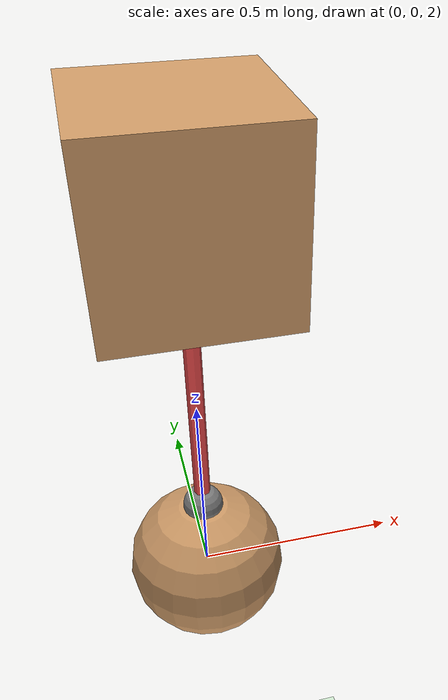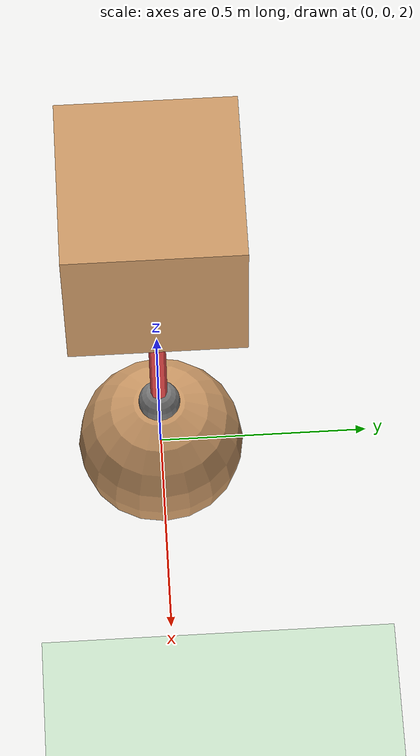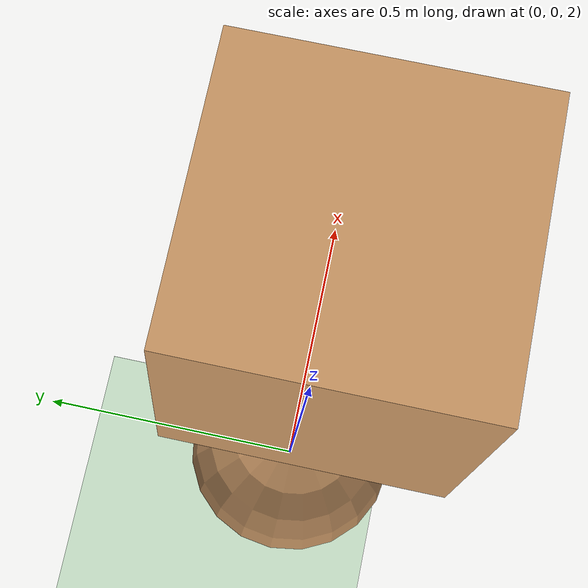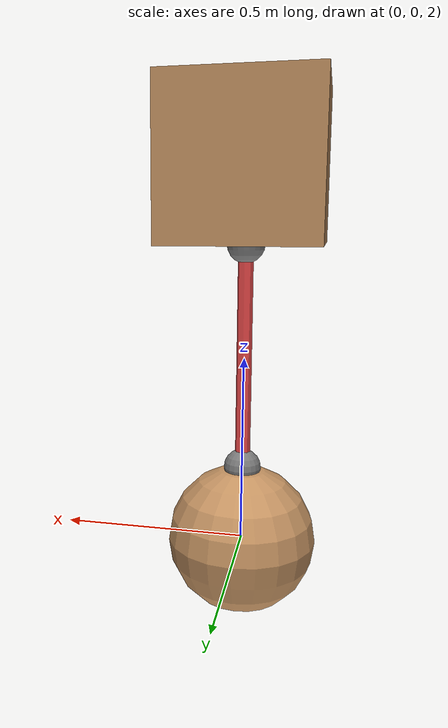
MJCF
<?xml version="1.0" encoding="utf-8"?>
<mujoco model="arm">
	<compiler angle="degree" coordinate="local" inertiafromgeom="true"/>
	<default>
		<geom conaffinity="1" condim="1" contype="1" margin="0.001" material="geom" rgba="0.8 0.6 .4 1" solimp=".8 .8 .01" solref=".02 1"/>
		<motor ctrllimited="true" ctrlrange="-.4 .4"/>
	</default>
	<option integrator="RK4" timestep="0.002"/>
	<visual>
		<map znear="0.02"/>
	</visual>
	<worldbody>
		<light cutoff="100" diffuse="1 1 1" dir="0 0 -1.3" directional="true" exponent="1" pos="0 0 1.3" specular="0.1 0.1 0.1"/>
		<geom conaffinity="1" condim="3" material="MatPlane" name="floor" pos="0 0 0" rgba="0.8 0.9 0.8 1" size="40 40 40" type="plane"/>
		<body name="block_body" pos="0.0 0.0 3.0">
			<geom name="block_geom" size="0.2 0.2 0.2" type="box"/>
			<site name="box_site" pos="0.0 0.0 -0.2" size="0.05"/>
			<body name="ball" pos="0.0 0.0 -1.0">
				<joint damping="2.0" name="ball_joint" pos="0.0 0.0 -0.2" type="ball"/>
				<joint axis="0 0 1" damping="2.0" type="slide"/>
				<joint axis="0 1 0" damping="2.0" type="slide"/>
				<joint axis="1 0 0" damping="2.0" type="slide"/>
				<geom pos="0.0 0.0 0.0" size="0.2" type="sphere"/>
				<site name="ball_site" pos="0.0 0.0 0.2" size="0.05"/>
			</body>
		</body>
	</worldbody>
	<tendon>
		<spatial damping="100.0" limited="false" name="string" range="0.5 2" rgba=".95 .3 .3 1" stiffness="3700.0" width="0.02">
			<site site="box_site"/>
			<site site="ball_site"/>
		</spatial>
	</tendon>
	<sensor>
		<force site="ball_site" name="ball_sensor"/>
	</sensor>
	<actuator>
		<general ctrllimited="true" ctrlrange="-2 0" gainprm="2000" name="string_actuator" tendon="string"/>
	</actuator>
	<asset>
		<texture fileback="sunny-back.png" filedown="sunny-down.png" filefront="sunny-front.png" fileleft="sunny-left.png" fileright="sunny-right.png" fileup="sunny-up.png" type="skybox"/>
		<texture builtin="flat" height="1278" mark="cross" markrgb="1 1 1" name="texgeom" random="0.01" rgb1="0.8627450980392157 0.8901960784313725 0.9137254901960784" rgb2="0.9058823529411765 0.9215686274509803 0.9647058823529412" type="cube" width="127"/>
		<texture builtin="checker" height="100" name="texplane" rgb1="0.8235294117647058 0.8117647058823529 0.9450980392156862" rgb2="0.43137254901960786 0.6392156862745098 0.9019607843137255" type="2d" width="100"/>
		<material name="MatPlane" reflectance="0.5" shininess="1" specular="1" texrepeat="60 60" texture="texplane"/>
		<material name="geom" texture="texgeom" texuniform="true"/>
	</asset>
</mujoco>
